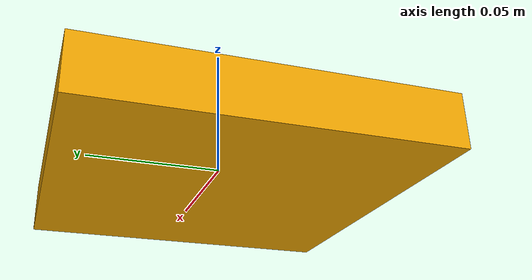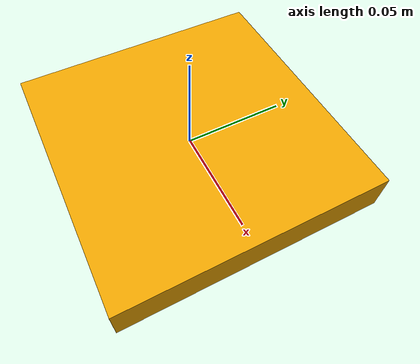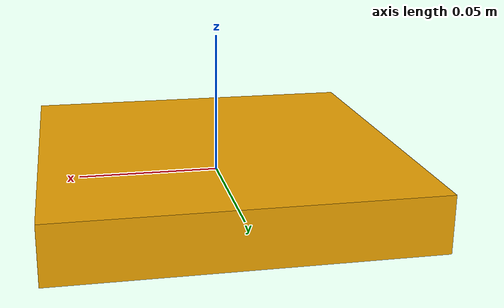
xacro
<?xml version='1.0'?>
<robot name="marker_3">

	<!-- * * * Link Definitions * * * -->

    <link name="simple_box_base_link_1">
 	    <inertial>
            <origin xyz="0 0 0" rpy="0 0 0"/>
            <mass value="1.0" />
            <inertia ixx="0.0741666666667" ixy="0.0" ixz="0.0" iyy="0.0585416666667" iyz="0.0" izz="0.0260416666667"/>
        </inertial>
        <collision>
            <origin xyz="0 0 0" rpy="0 0 0"/>
            <geometry>
                <box size="0.2 0.2 0.2"/>
            </geometry>
        </collision>
        <visual>
            <origin rpy="0.0 0 0" xyz="0 0 0"/>
            <geometry>
                <mesh filename="package://turtlebot3_description/urdf/marker_3.dae"/>
            </geometry>
        </visual>
    </link>

    <gazebo reference="simple_box_base_link_1">
        <kp>100000.0</kp>s
        <kd>100000.0</kd>
        <mu1>0.1</mu1>
        <mu2>0.1</mu2>
        <fdir1>1 0 0</fdir1>
    </gazebo>

</robot>
